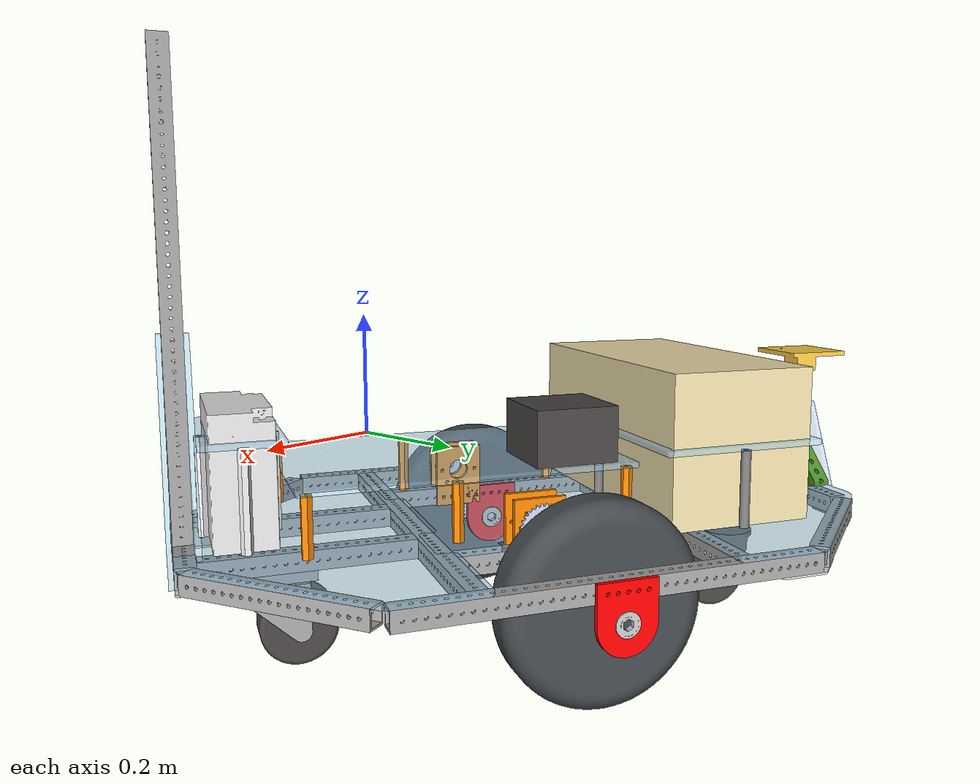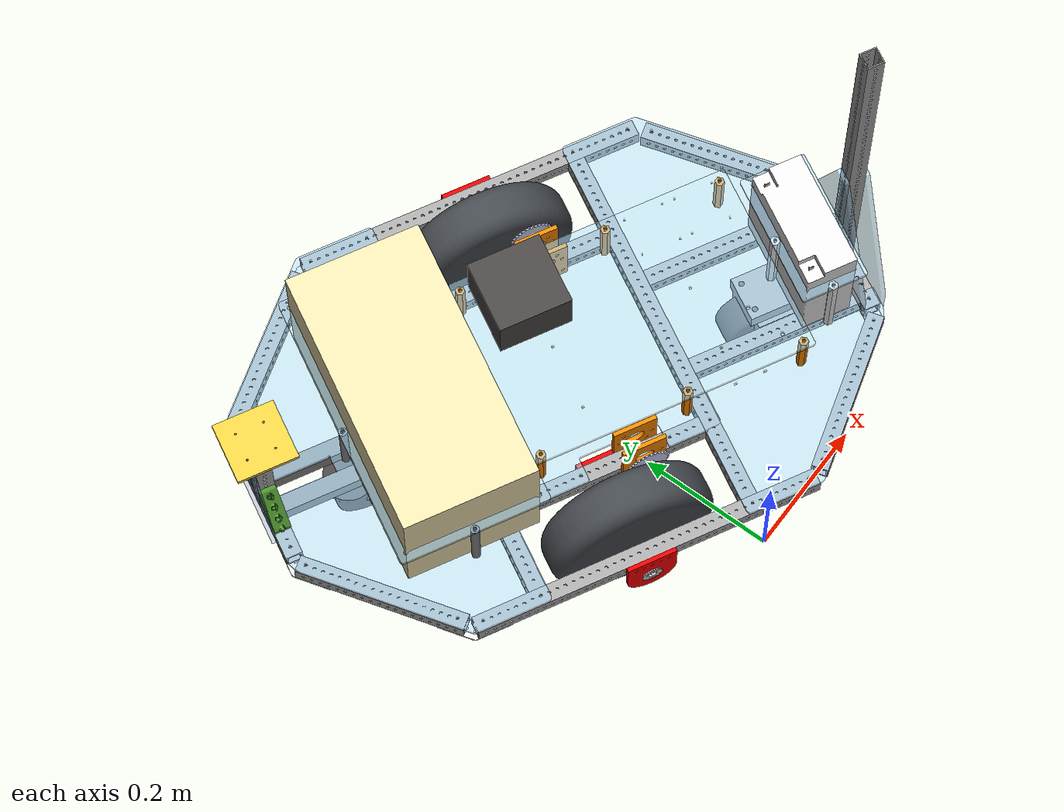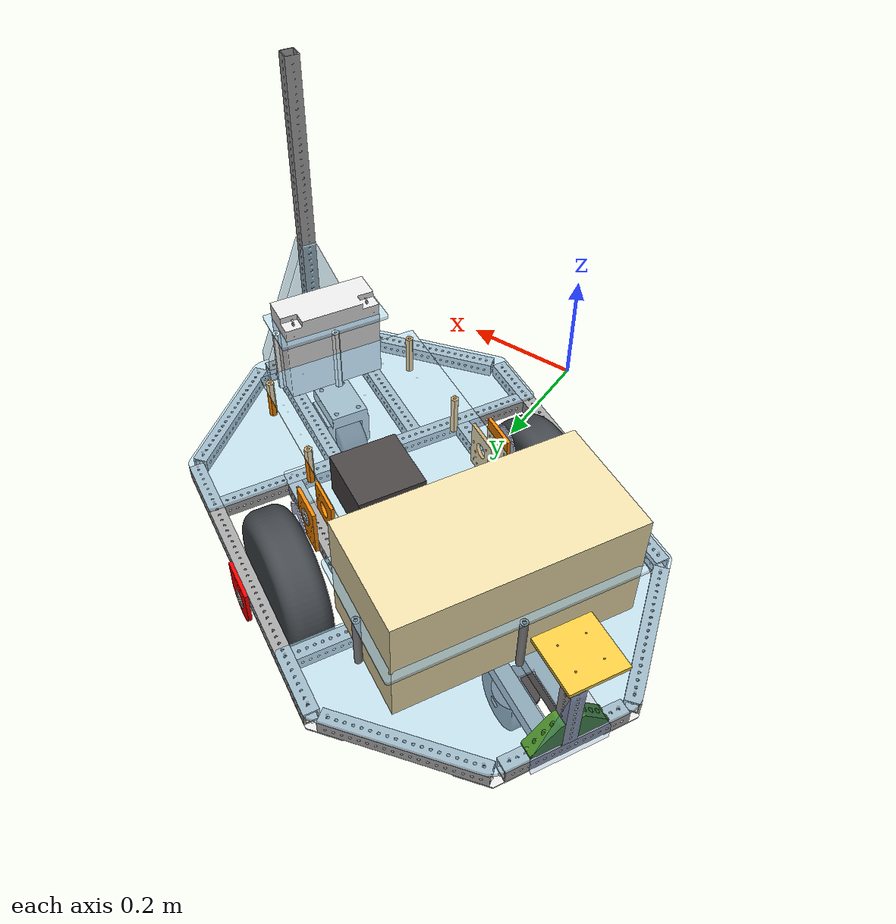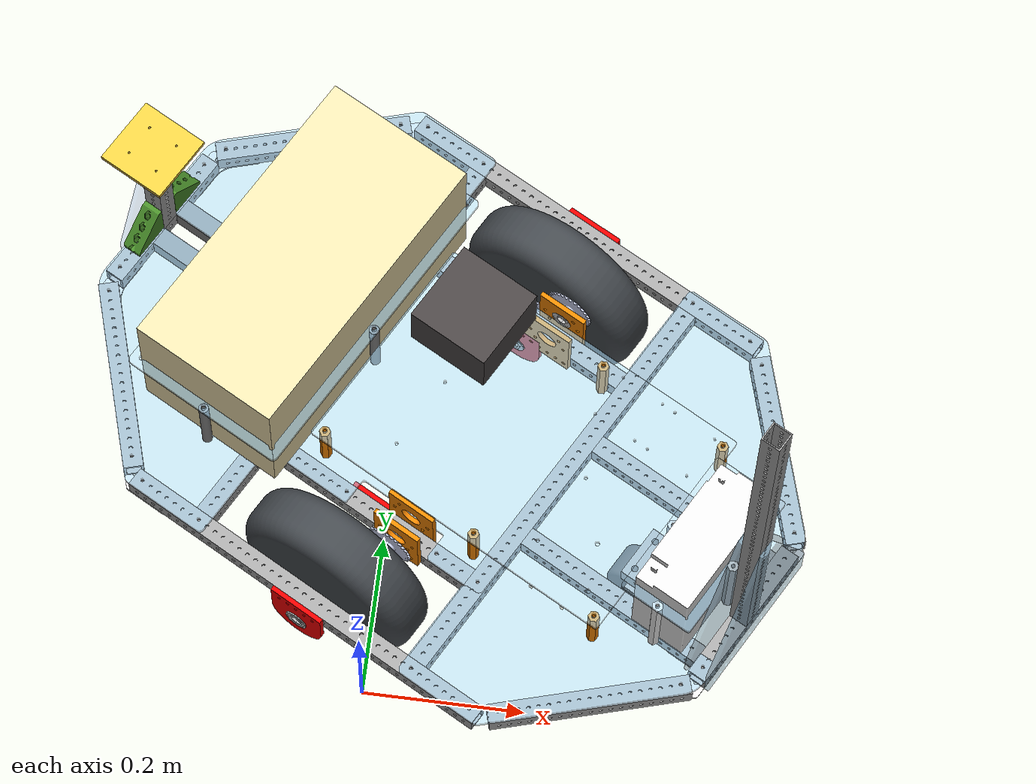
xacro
<?xml version="1.0" ?>
<!-- Generated using onshape-to-robot -->
<!-- Onshape https://cad.onshape.com/documents/e6f73c86a08716a88fa88928/w/70364c3c27402afccfdf9175/e/f88ba1396c902cb40ba93f4c -->
<robot name="igvc_description">
  <!-- Link igvc26_001 -->
  <link name="igvc26_001">
    <inertial>
      <origin xyz="-0.0368571 0.291615 0.214315" rpy="0 0 0"/>
      <mass value="56.0674"/>
      <inertia ixx="3.60749" ixy="0" ixz="0" iyy="1.28472" iyz="0.159952" izz="3.84124"/>
    </inertial>
    <!-- Part t_gusset__sharp_corners___10__0_098__thick___configuration_t_gusset__sharp_corners -->
    <visual>
      <origin xyz="0.416445 0.113415 -0.0766893" rpy="-1.5708 -4.0431e-08 1.06926"/>
      <geometry>
        <mesh filename="file://$(find igvc_description)/assets/t_gusset__sharp_corners___10__0_098__thick___configuration_t_gusset__sharp_corners.stl"/>
      </geometry>
      <material name="t_gusset__sharp_corners___10__0_098__thick___configuration_t_gusset__sharp_corners_material">
        <color rgba="0.901961 0.901961 0.901961 1"/>
      </material>
    </visual>
    <collision>
      <origin xyz="0.416445 0.113415 -0.0766893" rpy="-1.5708 -4.0431e-08 1.06926"/>
      <geometry>
        <mesh filename="file://$(find igvc_description)/assets/t_gusset__sharp_corners___10__0_098__thick___configuration_t_gusset__sharp_corners.stl"/>
      </geometry>
    </collision>
    <!-- Part part_28 -->
    <visual>
      <origin xyz="0.39351 0.212892 -0.0500392" rpy="1.6076e-08 -4.0431e-08 1.06926"/>
      <geometry>
        <mesh filename="file://$(find igvc_description)/assets/part_28.stl"/>
      </geometry>
      <material name="part_28_material">
        <color rgba="0.941176 0.87451 0.678431 1"/>
      </material>
    </visual>
    <collision>
      <origin xyz="0.39351 0.212892 -0.0500392" rpy="1.6076e-08 -4.0431e-08 1.06926"/>
      <geometry>
        <mesh filename="file://$(find igvc_description)/assets/part_28.stl"/>
      </geometry>
    </collision>
    <!-- Part igvc26_022 -->
    <visual>
      <origin xyz="0.0538636 0.399118 0.0515608" rpy="1.6076e-08 -4.0431e-08 1.06926"/>
      <geometry>
        <mesh filename="file://$(find igvc_description)/assets/igvc26_022.stl"/>
      </geometry>
      <material name="igvc26_022_material">
        <color rgba="0.615686 0.811765 0.929412 0.498039"/>
      </material>
    </visual>
    <collision>
      <origin xyz="0.0538636 0.399118 0.0515608" rpy="1.6076e-08 -4.0431e-08 1.06926"/>
      <geometry>
        <mesh filename="file://$(find igvc_description)/assets/igvc26_022.stl"/>
      </geometry>
    </collision>
    <!-- Part wcp_2103_rev2 -->
    <visual>
      <origin xyz="0.190503 0.546513 -0.0214642" rpy="-1.5708 1.45917 2.64006"/>
      <geometry>
        <mesh filename="file://$(find igvc_description)/assets/wcp_2103_rev2.stl"/>
      </geometry>
      <material name="wcp_2103_rev2_material">
        <color rgba="0.792157 0.819608 0.933333 1"/>
      </material>
    </visual>
    <collision>
      <origin xyz="0.190503 0.546513 -0.0214642" rpy="-1.5708 1.45917 2.64006"/>
      <geometry>
        <mesh filename="file://$(find igvc_description)/assets/wcp_2103_rev2.stl"/>
      </geometry>
    </collision>
    <!-- Part igvc26_013 -->
    <visual>
      <origin xyz="0.139416 0.462431 -0.0563892" rpy="1.6076e-08 -4.0431e-08 1.06926"/>
      <geometry>
        <mesh filename="file://$(find igvc_description)/assets/igvc26_013.stl"/>
      </geometry>
      <material name="igvc26_013_material">
        <color rgba="0.917647 0.917647 0.917647 1"/>
      </material>
    </visual>
    <collision>
      <origin xyz="0.139416 0.462431 -0.0563892" rpy="1.6076e-08 -4.0431e-08 1.06926"/>
      <geometry>
        <mesh filename="file://$(find igvc_description)/assets/igvc26_013.stl"/>
      </geometry>
    </collision>
    <!-- Part igvc26_003 -->
    <visual>
      <origin xyz="-0.171736 1.1724 -0.0627392" rpy="-4.0431e-08 -1.6076e-08 2.64006"/>
      <geometry>
        <mesh filename="file://$(find igvc_description)/assets/igvc26_003.stl"/>
      </geometry>
      <material name="igvc26_003_material">
        <color rgba="0.647059 0.647059 0.647059 1"/>
      </material>
    </visual>
    <collision>
      <origin xyz="-0.171736 1.1724 -0.0627392" rpy="-4.0431e-08 -1.6076e-08 2.64006"/>
      <geometry>
        <mesh filename="file://$(find igvc_description)/assets/igvc26_003.stl"/>
      </geometry>
    </collision>
    <!-- Part igvc26_023 -->
    <visual>
      <origin xyz="-0.362056 0.627164 -0.0754392" rpy="1.6076e-08 -4.0431e-08 1.06926"/>
      <geometry>
        <mesh filename="file://$(find igvc_description)/assets/igvc26_023.stl"/>
      </geometry>
      <material name="igvc26_023_material">
        <color rgba="0.25098 0.482353 0.992157 0.2"/>
      </material>
    </visual>
    <collision>
      <origin xyz="-0.362056 0.627164 -0.0754392" rpy="1.6076e-08 -4.0431e-08 1.06926"/>
      <geometry>
        <mesh filename="file://$(find igvc_description)/assets/igvc26_023.stl"/>
      </geometry>
    </collision>
    <!-- Part igvc26_011 -->
    <visual>
      <origin xyz="0.0538636 0.399118 -0.0500392" rpy="1.6076e-08 -4.0431e-08 1.06926"/>
      <geometry>
        <mesh filename="file://$(find igvc_description)/assets/igvc26_011.stl"/>
      </geometry>
      <material name="igvc26_011_material">
        <color rgba="0.615686 0.811765 0.929412 0.498039"/>
      </material>
    </visual>
    <collision>
      <origin xyz="0.0538636 0.399118 -0.0500392" rpy="1.6076e-08 -4.0431e-08 1.06926"/>
      <geometry>
        <mesh filename="file://$(find igvc_description)/assets/igvc26_011.stl"/>
      </geometry>
    </collision>
    <!-- Part igvc26_013_2 -->
    <visual>
      <origin xyz="0.0612413 0.505294 -0.0563892" rpy="1.6076e-08 -4.0431e-08 1.06926"/>
      <geometry>
        <mesh filename="file://$(find igvc_description)/assets/igvc26_013.stl"/>
      </geometry>
      <material name="igvc26_013_2_material">
        <color rgba="0.917647 0.917647 0.917647 1"/>
      </material>
    </visual>
    <collision>
      <origin xyz="0.0612413 0.505294 -0.0563892" rpy="1.6076e-08 -4.0431e-08 1.06926"/>
      <geometry>
        <mesh filename="file://$(find igvc_description)/assets/igvc26_013.stl"/>
      </geometry>
    </collision>
    <!-- Part igvc26_015 -->
    <visual>
      <origin xyz="0.0267798 0.728242 -0.0563892" rpy="1.6076e-08 -4.0431e-08 1.06926"/>
      <geometry>
        <mesh filename="file://$(find igvc_description)/assets/igvc26_015.stl"/>
      </geometry>
      <material name="igvc26_015_material">
        <color rgba="0.972549 0.529412 0.00392157 1"/>
      </material>
    </visual>
    <collision>
      <origin xyz="0.0267798 0.728242 -0.0563892" rpy="1.6076e-08 -4.0431e-08 1.06926"/>
      <geometry>
        <mesh filename="file://$(find igvc_description)/assets/igvc26_015.stl"/>
      </geometry>
    </collision>
    <!-- Part igvc26_006 -->
    <visual>
      <origin xyz="0.2153 0.482224 -0.0627392" rpy="-1.6076e-08 4.0431e-08 -2.07233"/>
      <geometry>
        <mesh filename="file://$(find igvc_description)/assets/igvc26_006.stl"/>
      </geometry>
      <material name="igvc26_006_material">
        <color rgba="0.972549 0.529412 0.00392157 1"/>
      </material>
    </visual>
    <collision>
      <origin xyz="0.2153 0.482224 -0.0627392" rpy="-1.6076e-08 4.0431e-08 -2.07233"/>
      <geometry>
        <mesh filename="file://$(find igvc_description)/assets/igvc26_006.stl"/>
      </geometry>
    </collision>
    <!-- Part igvc26_015_2 -->
    <visual>
      <origin xyz="-0.306153 0.596513 -0.0563892" rpy="1.6076e-08 -4.0431e-08 1.06926"/>
      <geometry>
        <mesh filename="file://$(find igvc_description)/assets/igvc26_015.stl"/>
      </geometry>
      <material name="igvc26_015_2_material">
        <color rgba="0.972549 0.529412 0.00392157 1"/>
      </material>
    </visual>
    <collision>
      <origin xyz="-0.306153 0.596513 -0.0563892" rpy="1.6076e-08 -4.0431e-08 1.06926"/>
      <geometry>
        <mesh filename="file://$(find igvc_description)/assets/igvc26_015.stl"/>
      </geometry>
    </collision>
    <!-- Part wcp_2103_rev2_2 -->
    <visual>
      <origin xyz="0.00631191 0.202876 -0.0214643" rpy="2.07233 1.5708 0"/>
      <geometry>
        <mesh filename="file://$(find igvc_description)/assets/wcp_2103_rev2.stl"/>
      </geometry>
      <material name="wcp_2103_rev2_2_material">
        <color rgba="0.792157 0.819608 0.933333 1"/>
      </material>
    </visual>
    <collision>
      <origin xyz="0.00631191 0.202876 -0.0214643" rpy="2.07233 1.5708 0"/>
      <geometry>
        <mesh filename="file://$(find igvc_description)/assets/wcp_2103_rev2.stl"/>
      </geometry>
    </collision>
    <!-- Part right_triangle_gusset -->
    <visual>
      <origin xyz="-0.362517 0.613187 -0.0414198" rpy="1.6076e-08 -4.0431e-08 1.06926"/>
      <geometry>
        <mesh filename="file://$(find igvc_description)/assets/right_triangle_gusset.stl"/>
      </geometry>
      <material name="right_triangle_gusset_material">
        <color rgba="0.282353 0.54902 0.160784 1"/>
      </material>
    </visual>
    <collision>
      <origin xyz="-0.362517 0.613187 -0.0414198" rpy="1.6076e-08 -4.0431e-08 1.06926"/>
      <geometry>
        <mesh filename="file://$(find igvc_description)/assets/right_triangle_gusset.stl"/>
      </geometry>
    </collision>
    <!-- Part left_triangle_gusset -->
    <visual>
      <origin xyz="-0.362594 0.612975 -0.0436892" rpy="1.6076e-08 -4.0431e-08 1.06926"/>
      <geometry>
        <mesh filename="file://$(find igvc_description)/assets/left_triangle_gusset.stl"/>
      </geometry>
      <material name="left_triangle_gusset_material">
        <color rgba="0.282353 0.54902 0.160784 1"/>
      </material>
    </visual>
    <collision>
      <origin xyz="-0.362594 0.612975 -0.0436892" rpy="1.6076e-08 -4.0431e-08 1.06926"/>
      <geometry>
        <mesh filename="file://$(find igvc_description)/assets/left_triangle_gusset.stl"/>
      </geometry>
    </collision>
    <!-- Part igvc26_019 -->
    <visual>
      <origin xyz="0.0538636 0.399118 -0.0627392" rpy="1.6076e-08 -4.0431e-08 1.06926"/>
      <geometry>
        <mesh filename="file://$(find igvc_description)/assets/igvc26_019.stl"/>
      </geometry>
      <material name="igvc26_019_material">
        <color rgba="0.615686 0.811765 0.929412 0.498039"/>
      </material>
    </visual>
    <collision>
      <origin xyz="0.0538636 0.399118 -0.0627392" rpy="1.6076e-08 -4.0431e-08 1.06926"/>
      <geometry>
        <mesh filename="file://$(find igvc_description)/assets/igvc26_019.stl"/>
      </geometry>
    </collision>
    <!-- Part 135_degree_gusset___10__0_098__thick___configuration__135_degree -->
    <visual>
      <origin xyz="-0.32561 0.261755 -0.0766892" rpy="1.5708 -3.9956e-08 1.85466"/>
      <geometry>
        <mesh filename="file://$(find igvc_description)/assets/135_degree_gusset___10__0_098__thick___configuration__135_degree.stl"/>
      </geometry>
      <material name="135_degree_gusset___10__0_098__thick___configuration__135_degree_material">
        <color rgba="0.901961 0.901961 0.901961 1"/>
      </material>
    </visual>
    <collision>
      <origin xyz="-0.32561 0.261755 -0.0766892" rpy="1.5708 -3.9956e-08 1.85466"/>
      <geometry>
        <mesh filename="file://$(find igvc_description)/assets/135_degree_gusset___10__0_098__thick___configuration__135_degree.stl"/>
      </geometry>
    </collision>
    <!-- Part igvc26_010 -->
    <visual>
      <origin xyz="0.0538636 0.399118 -0.0754392" rpy="1.6076e-08 -4.0431e-08 1.06926"/>
      <geometry>
        <mesh filename="file://$(find igvc_description)/assets/igvc26_010.stl"/>
      </geometry>
      <material name="igvc26_010_material">
        <color rgba="0.647059 0.647059 0.647059 1"/>
      </material>
    </visual>
    <collision>
      <origin xyz="0.0538636 0.399118 -0.0754392" rpy="1.6076e-08 -4.0431e-08 1.06926"/>
      <geometry>
        <mesh filename="file://$(find igvc_description)/assets/igvc26_010.stl"/>
      </geometry>
    </collision>
    <!-- Part wcp_2103_rev2_3 -->
    <visual>
      <origin xyz="-0.0398553 0.228189 -0.100839" rpy="1.5708 1.19363 -0.501532"/>
      <geometry>
        <mesh filename="file://$(find igvc_description)/assets/wcp_2103_rev2.stl"/>
      </geometry>
      <material name="wcp_2103_rev2_3_material">
        <color rgba="0.792157 0.819608 0.933333 1"/>
      </material>
    </visual>
    <collision>
      <origin xyz="-0.0398553 0.228189 -0.100839" rpy="1.5708 1.19363 -0.501532"/>
      <geometry>
        <mesh filename="file://$(find igvc_description)/assets/wcp_2103_rev2.stl"/>
      </geometry>
    </collision>
    <!-- Part igvc26_005 -->
    <visual>
      <origin xyz="0.360364 0.958126 -0.0627392" rpy="1.6076e-08 -4.0431e-08 1.06926"/>
      <geometry>
        <mesh filename="file://$(find igvc_description)/assets/igvc26_005.stl"/>
      </geometry>
      <material name="igvc26_005_material">
        <color rgba="1 0 0 1"/>
      </material>
    </visual>
    <collision>
      <origin xyz="0.360364 0.958126 -0.0627392" rpy="1.6076e-08 -4.0431e-08 1.06926"/>
      <geometry>
        <mesh filename="file://$(find igvc_description)/assets/igvc26_005.stl"/>
      </geometry>
    </collision>
    <!-- Part jetson_computer -->
    <visual>
      <origin xyz="0.0264255 0.507571 0.0388608" rpy="1.6076e-08 -4.0431e-08 1.06926"/>
      <geometry>
        <mesh filename="file://$(find igvc_description)/assets/jetson_computer.stl"/>
      </geometry>
      <material name="jetson_computer_material">
        <color rgba="0.286275 0.266667 0.266667 1"/>
      </material>
    </visual>
    <collision>
      <origin xyz="0.0264255 0.507571 0.0388608" rpy="1.6076e-08 -4.0431e-08 1.06926"/>
      <geometry>
        <mesh filename="file://$(find igvc_description)/assets/jetson_computer.stl"/>
      </geometry>
    </collision>
    <!-- Part part_1 -->
    <visual>
      <origin xyz="-0.345352 0.618005 0.150621" rpy="1.6076e-08 -4.0431e-08 1.06926"/>
      <geometry>
        <mesh filename="file://$(find igvc_description)/assets/part_1.stl"/>
      </geometry>
      <material name="part_1_material">
        <color rgba="0.980392 0.796078 0.262745 1"/>
      </material>
    </visual>
    <collision>
      <origin xyz="-0.345352 0.618005 0.150621" rpy="1.6076e-08 -4.0431e-08 1.06926"/>
      <geometry>
        <mesh filename="file://$(find igvc_description)/assets/part_1.stl"/>
      </geometry>
    </collision>
    <!-- Part igvc26_003_2 -->
    <visual>
      <origin xyz="0.272956 0.463037 -0.0627392" rpy="-4.0431e-08 -1.6076e-08 2.64006"/>
      <geometry>
        <mesh filename="file://$(find igvc_description)/assets/igvc26_003.stl"/>
      </geometry>
      <material name="igvc26_003_2_material">
        <color rgba="0.647059 0.647059 0.647059 1"/>
      </material>
    </visual>
    <collision>
      <origin xyz="0.272956 0.463037 -0.0627392" rpy="-4.0431e-08 -1.6076e-08 2.64006"/>
      <geometry>
        <mesh filename="file://$(find igvc_description)/assets/igvc26_003.stl"/>
      </geometry>
    </collision>
    <!-- Part igvc26_021 -->
    <visual>
      <origin xyz="0.249264 0.530962 -0.0436892" rpy="1.6076e-08 -4.0431e-08 1.06926"/>
      <geometry>
        <mesh filename="file://$(find igvc_description)/assets/igvc26_021.stl"/>
      </geometry>
      <material name="igvc26_021_material">
        <color rgba="0.498039 0.498039 0.498039 1"/>
      </material>
    </visual>
    <collision>
      <origin xyz="0.249264 0.530962 -0.0436892" rpy="1.6076e-08 -4.0431e-08 1.06926"/>
      <geometry>
        <mesh filename="file://$(find igvc_description)/assets/igvc26_021.stl"/>
      </geometry>
    </collision>
    <!-- Part igvc26_001 -->
    <visual>
      <origin xyz="0.0538636 0.399118 -0.0627392" rpy="1.6076e-08 -4.0431e-08 1.06926"/>
      <geometry>
        <mesh filename="file://$(find igvc_description)/assets/igvc26_001.stl"/>
      </geometry>
      <material name="igvc26_001_material">
        <color rgba="0.647059 0.647059 0.647059 1"/>
      </material>
    </visual>
    <collision>
      <origin xyz="0.0538636 0.399118 -0.0627392" rpy="1.6076e-08 -4.0431e-08 1.06926"/>
      <geometry>
        <mesh filename="file://$(find igvc_description)/assets/igvc26_001.stl"/>
      </geometry>
    </collision>
    <!-- Part igvc26_008 -->
    <visual>
      <origin xyz="0.343399 0.240368 -0.0627392" rpy="1.6076e-08 -4.0431e-08 1.06926"/>
      <geometry>
        <mesh filename="file://$(find igvc_description)/assets/igvc26_008.stl"/>
      </geometry>
      <material name="igvc26_008_material">
        <color rgba="0.647059 0.647059 0.647059 1"/>
      </material>
    </visual>
    <collision>
      <origin xyz="0.343399 0.240368 -0.0627392" rpy="1.6076e-08 -4.0431e-08 1.06926"/>
      <geometry>
        <mesh filename="file://$(find igvc_description)/assets/igvc26_008.stl"/>
      </geometry>
    </collision>
    <!-- Part igvc26_020 -->
    <visual>
      <origin xyz="0.0538636 0.399118 -0.0500392" rpy="1.6076e-08 -4.0431e-08 1.06926"/>
      <geometry>
        <mesh filename="file://$(find igvc_description)/assets/igvc26_020.stl"/>
      </geometry>
      <material name="igvc26_020_material">
        <color rgba="0.615686 0.811765 0.929412 0.498039"/>
      </material>
    </visual>
    <collision>
      <origin xyz="0.0538636 0.399118 -0.0500392" rpy="1.6076e-08 -4.0431e-08 1.06926"/>
      <geometry>
        <mesh filename="file://$(find igvc_description)/assets/igvc26_020.stl"/>
      </geometry>
    </collision>
    <!-- Part igvc26_005_2 -->
    <visual>
      <origin xyz="0.277936 0.80779 -0.0627392" rpy="1.6076e-08 -4.0431e-08 1.06926"/>
      <geometry>
        <mesh filename="file://$(find igvc_description)/assets/igvc26_005.stl"/>
      </geometry>
      <material name="igvc26_005_2_material">
        <color rgba="1 0 0 1"/>
      </material>
    </visual>
    <collision>
      <origin xyz="0.277936 0.80779 -0.0627392" rpy="1.6076e-08 -4.0431e-08 1.06926"/>
      <geometry>
        <mesh filename="file://$(find igvc_description)/assets/igvc26_005.stl"/>
      </geometry>
    </collision>
    <!-- Part igvc26_021_2 -->
    <visual>
      <origin xyz="0.0538636 0.399118 -0.0436892" rpy="1.6076e-08 -4.0431e-08 1.06926"/>
      <geometry>
        <mesh filename="file://$(find igvc_description)/assets/igvc26_021.stl"/>
      </geometry>
      <material name="igvc26_021_2_material">
        <color rgba="0.498039 0.498039 0.498039 1"/>
      </material>
    </visual>
    <collision>
      <origin xyz="0.0538636 0.399118 -0.0436892" rpy="1.6076e-08 -4.0431e-08 1.06926"/>
      <geometry>
        <mesh filename="file://$(find igvc_description)/assets/igvc26_021.stl"/>
      </geometry>
    </collision>
    <!-- Part igvc26_013_3 -->
    <visual>
      <origin xyz="0.320827 0.678131 -0.0563892" rpy="3.4138e-08 -2.6976e-08 0.545666"/>
      <geometry>
        <mesh filename="file://$(find igvc_description)/assets/igvc26_013.stl"/>
      </geometry>
      <material name="igvc26_013_3_material">
        <color rgba="0.917647 0.917647 0.917647 1"/>
      </material>
    </visual>
    <collision>
      <origin xyz="0.320827 0.678131 -0.0563892" rpy="3.4138e-08 -2.6976e-08 0.545666"/>
      <geometry>
        <mesh filename="file://$(find igvc_description)/assets/igvc26_013.stl"/>
      </geometry>
    </collision>
    <!-- Part igvc26_005_3 -->
    <visual>
      <origin xyz="-0.170209 -0.00955518 -0.0627393" rpy="-1.6076e-08 4.0431e-08 -2.07233"/>
      <geometry>
        <mesh filename="file://$(find igvc_description)/assets/igvc26_005.stl"/>
      </geometry>
      <material name="igvc26_005_3_material">
        <color rgba="1 0 0 1"/>
      </material>
    </visual>
    <collision>
      <origin xyz="-0.170209 -0.00955518 -0.0627393" rpy="-1.6076e-08 4.0431e-08 -2.07233"/>
      <geometry>
        <mesh filename="file://$(find igvc_description)/assets/igvc26_005.stl"/>
      </geometry>
    </collision>
    <!-- Part t_gusset__sharp_corners___10__0_098__thick___configuration_t_gusset__sharp_corners_2 -->
    <visual>
      <origin xyz="0.489714 0.247046 -0.0766892" rpy="-1.5708 -4.0431e-08 1.06926"/>
      <geometry>
        <mesh filename="file://$(find igvc_description)/assets/t_gusset__sharp_corners___10__0_098__thick___configuration_t_gusset__sharp_corners.stl"/>
      </geometry>
      <material name="t_gusset__sharp_corners___10__0_098__thick___configuration_t_gusset__sharp_corners_2_material">
        <color rgba="0.901961 0.901961 0.901961 1"/>
      </material>
    </visual>
    <collision>
      <origin xyz="0.489714 0.247046 -0.0766892" rpy="-1.5708 -4.0431e-08 1.06926"/>
      <geometry>
        <mesh filename="file://$(find igvc_description)/assets/t_gusset__sharp_corners___10__0_098__thick___configuration_t_gusset__sharp_corners.stl"/>
      </geometry>
    </collision>
    <!-- Part igvc26_006_2 -->
    <visual>
      <origin xyz="-0.0337496 0.239325 -0.0627392" rpy="1.6076e-08 -4.0431e-08 1.06926"/>
      <geometry>
        <mesh filename="file://$(find igvc_description)/assets/igvc26_006.stl"/>
      </geometry>
      <material name="igvc26_006_2_material">
        <color rgba="0.972549 0.529412 0.00392157 1"/>
      </material>
    </visual>
    <collision>
      <origin xyz="-0.0337496 0.239325 -0.0627392" rpy="1.6076e-08 -4.0431e-08 1.06926"/>
      <geometry>
        <mesh filename="file://$(find igvc_description)/assets/igvc26_006.stl"/>
      </geometry>
    </collision>
    <!-- Part igvc26_012 -->
    <visual>
      <origin xyz="0.0538636 0.399118 -0.0563892" rpy="1.6076e-08 -4.0431e-08 1.06926"/>
      <geometry>
        <mesh filename="file://$(find igvc_description)/assets/igvc26_012.stl"/>
      </geometry>
      <material name="igvc26_012_material">
        <color rgba="0.615686 0.811765 0.929412 0.498039"/>
      </material>
    </visual>
    <collision>
      <origin xyz="0.0538636 0.399118 -0.0563892" rpy="1.6076e-08 -4.0431e-08 1.06926"/>
      <geometry>
        <mesh filename="file://$(find igvc_description)/assets/igvc26_012.stl"/>
      </geometry>
    </collision>
    <!-- Part igvc26_008_2 -->
    <visual>
      <origin xyz="0.0538636 0.399118 -0.0627392" rpy="1.6076e-08 -4.0431e-08 1.06926"/>
      <geometry>
        <mesh filename="file://$(find igvc_description)/assets/igvc26_008.stl"/>
      </geometry>
      <material name="igvc26_008_2_material">
        <color rgba="0.647059 0.647059 0.647059 1"/>
      </material>
    </visual>
    <collision>
      <origin xyz="0.0538636 0.399118 -0.0627392" rpy="1.6076e-08 -4.0431e-08 1.06926"/>
      <geometry>
        <mesh filename="file://$(find igvc_description)/assets/igvc26_008.stl"/>
      </geometry>
    </collision>
    <!-- Part igvc26_004 -->
    <visual>
      <origin xyz="0.0538636 0.399118 -0.0500392" rpy="1.6076e-08 -4.0431e-08 1.06926"/>
      <geometry>
        <mesh filename="file://$(find igvc_description)/assets/igvc26_004.stl"/>
      </geometry>
      <material name="igvc26_004_material">
        <color rgba="0.615686 0.811765 0.929412 0.498039"/>
      </material>
    </visual>
    <collision>
      <origin xyz="0.0538636 0.399118 -0.0500392" rpy="1.6076e-08 -4.0431e-08 1.06926"/>
      <geometry>
        <mesh filename="file://$(find igvc_description)/assets/igvc26_004.stl"/>
      </geometry>
    </collision>
    <!-- Part igvc26_002 -->
    <visual>
      <origin xyz="0.852295 -0.0386569 -0.0627393" rpy="1.6076e-08 -4.0431e-08 1.06926"/>
      <geometry>
        <mesh filename="file://$(find igvc_description)/assets/igvc26_002.stl"/>
      </geometry>
      <material name="igvc26_002_material">
        <color rgba="0.647059 0.647059 0.647059 1"/>
      </material>
    </visual>
    <collision>
      <origin xyz="0.852295 -0.0386569 -0.0627393" rpy="1.6076e-08 -4.0431e-08 1.06926"/>
      <geometry>
        <mesh filename="file://$(find igvc_description)/assets/igvc26_002.stl"/>
      </geometry>
    </collision>
    <!-- Part igvc26_019_2 -->
    <visual>
      <origin xyz="0.0260237 0.414382 -0.0627392" rpy="1.6076e-08 -4.0431e-08 1.06926"/>
      <geometry>
        <mesh filename="file://$(find igvc_description)/assets/igvc26_019.stl"/>
      </geometry>
      <material name="igvc26_019_2_material">
        <color rgba="0.615686 0.811765 0.929412 0.498039"/>
      </material>
    </visual>
    <collision>
      <origin xyz="0.0260237 0.414382 -0.0627392" rpy="1.6076e-08 -4.0431e-08 1.06926"/>
      <geometry>
        <mesh filename="file://$(find igvc_description)/assets/igvc26_019.stl"/>
      </geometry>
    </collision>
    <!-- Part 1_2__hex_bore_bearing__1_125__od__0_313__wd__shielded__flanged___f6b8f0dcc29d10daa2678488de8ff804 -->
    <visual>
      <origin xyz="-0.0978602 0.122397 -0.100839" rpy="2.07233 1.5708 0"/>
      <geometry>
        <mesh filename="file://$(find igvc_description)/assets/1_2__hex_bore_bearing__1_125__od__0_313__wd__shielded__flanged___f6b8f0dcc29d10daa2678488de8ff804.stl"/>
      </geometry>
      <material name="1_2__hex_bore_bearing__1_125__od__0_313__wd__shielded__flanged___f6b8f0dcc29d10daa2678488de8ff804_material">
        <color rgba="0.776471 0.776471 0.776471 1"/>
      </material>
    </visual>
    <collision>
      <origin xyz="-0.0978602 0.122397 -0.100839" rpy="2.07233 1.5708 0"/>
      <geometry>
        <mesh filename="file://$(find igvc_description)/assets/1_2__hex_bore_bearing__1_125__od__0_313__wd__shielded__flanged___f6b8f0dcc29d10daa2678488de8ff804.stl"/>
      </geometry>
    </collision>
    <!-- Part igvc26_002_2 -->
    <visual>
      <origin xyz="-0.564239 0.218789 0.0515607" rpy="0.501532 1.5708 0"/>
      <geometry>
        <mesh filename="file://$(find igvc_description)/assets/igvc26_002.stl"/>
      </geometry>
      <material name="igvc26_002_2_material">
        <color rgba="0.647059 0.647059 0.647059 1"/>
      </material>
    </visual>
    <collision>
      <origin xyz="-0.564239 0.218789 0.0515607" rpy="0.501532 1.5708 0"/>
      <geometry>
        <mesh filename="file://$(find igvc_description)/assets/igvc26_002.stl"/>
      </geometry>
    </collision>
    <!-- Part igvc26_017 -->
    <visual>
      <origin xyz="0.0538636 0.399118 -0.0627392" rpy="1.6076e-08 -4.0431e-08 1.06926"/>
      <geometry>
        <mesh filename="file://$(find igvc_description)/assets/igvc26_017.stl"/>
      </geometry>
      <material name="igvc26_017_material">
        <color rgba="0.647059 0.647059 0.647059 1"/>
      </material>
    </visual>
    <collision>
      <origin xyz="0.0538636 0.399118 -0.0627392" rpy="1.6076e-08 -4.0431e-08 1.06926"/>
      <geometry>
        <mesh filename="file://$(find igvc_description)/assets/igvc26_017.stl"/>
      </geometry>
    </collision>
    <!-- Part igvc26_015_3 -->
    <visual>
      <origin xyz="-0.173667 0.838146 -0.0563892" rpy="1.6076e-08 -4.0431e-08 1.06926"/>
      <geometry>
        <mesh filename="file://$(find igvc_description)/assets/igvc26_015.stl"/>
      </geometry>
      <material name="igvc26_015_3_material">
        <color rgba="0.972549 0.529412 0.00392157 1"/>
      </material>
    </visual>
    <collision>
      <origin xyz="-0.173667 0.838146 -0.0563892" rpy="1.6076e-08 -4.0431e-08 1.06926"/>
      <geometry>
        <mesh filename="file://$(find igvc_description)/assets/igvc26_015.stl"/>
      </geometry>
    </collision>
    <!-- Part 1_2__hex_bore_bearing__1_125__od__0_313__wd__shielded__flanged___f6b8f0dcc29d10daa2678488de8ff804_2 -->
    <visual>
      <origin xyz="0.181344 0.529809 -0.0214642" rpy="-1.06926 1.5708 0"/>
      <geometry>
        <mesh filename="file://$(find igvc_description)/assets/1_2__hex_bore_bearing__1_125__od__0_313__wd__shielded__flanged___f6b8f0dcc29d10daa2678488de8ff804.stl"/>
      </geometry>
      <material name="1_2__hex_bore_bearing__1_125__od__0_313__wd__shielded__flanged___f6b8f0dcc29d10daa2678488de8ff804_2_material">
        <color rgba="0.776471 0.776471 0.776471 1"/>
      </material>
    </visual>
    <collision>
      <origin xyz="0.181344 0.529809 -0.0214642" rpy="-1.06926 1.5708 0"/>
      <geometry>
        <mesh filename="file://$(find igvc_description)/assets/1_2__hex_bore_bearing__1_125__od__0_313__wd__shielded__flanged___f6b8f0dcc29d10daa2678488de8ff804.stl"/>
      </geometry>
    </collision>
    <!-- Part igvc26_021_3 -->
    <visual>
      <origin xyz="0.0599532 0.63476 -0.0436892" rpy="1.6076e-08 -4.0431e-08 1.06926"/>
      <geometry>
        <mesh filename="file://$(find igvc_description)/assets/igvc26_021.stl"/>
      </geometry>
      <material name="igvc26_021_3_material">
        <color rgba="0.498039 0.498039 0.498039 1"/>
      </material>
    </visual>
    <collision>
      <origin xyz="0.0599532 0.63476 -0.0436892" rpy="1.6076e-08 -4.0431e-08 1.06926"/>
      <geometry>
        <mesh filename="file://$(find igvc_description)/assets/igvc26_021.stl"/>
      </geometry>
    </collision>
    <!-- Part igvc26_002_3 -->
    <visual>
      <origin xyz="0.0538636 0.399118 -0.0627392" rpy="1.6076e-08 -4.0431e-08 1.06926"/>
      <geometry>
        <mesh filename="file://$(find igvc_description)/assets/igvc26_002.stl"/>
      </geometry>
      <material name="igvc26_002_3_material">
        <color rgba="0.647059 0.647059 0.647059 1"/>
      </material>
    </visual>
    <collision>
      <origin xyz="0.0538636 0.399118 -0.0627392" rpy="1.6076e-08 -4.0431e-08 1.06926"/>
      <geometry>
        <mesh filename="file://$(find igvc_description)/assets/igvc26_002.stl"/>
      </geometry>
    </collision>
    <!-- Part igvc26_007 -->
    <visual>
      <origin xyz="-0.103045 0.11294 -0.0627393" rpy="-1.6076e-08 4.0431e-08 -2.07233"/>
      <geometry>
        <mesh filename="file://$(find igvc_description)/assets/igvc26_007.stl"/>
      </geometry>
      <material name="igvc26_007_material">
        <color rgba="0.647059 0.647059 0.647059 1"/>
      </material>
    </visual>
    <collision>
      <origin xyz="-0.103045 0.11294 -0.0627393" rpy="-1.6076e-08 4.0431e-08 -2.07233"/>
      <geometry>
        <mesh filename="file://$(find igvc_description)/assets/igvc26_007.stl"/>
      </geometry>
    </collision>
    <!-- Part igvc26_015_4 -->
    <visual>
      <origin xyz="0.0538636 0.399118 -0.0563892" rpy="1.6076e-08 -4.0431e-08 1.06926"/>
      <geometry>
        <mesh filename="file://$(find igvc_description)/assets/igvc26_015.stl"/>
      </geometry>
      <material name="igvc26_015_4_material">
        <color rgba="0.972549 0.529412 0.00392157 1"/>
      </material>
    </visual>
    <collision>
      <origin xyz="0.0538636 0.399118 -0.0563892" rpy="1.6076e-08 -4.0431e-08 1.06926"/>
      <geometry>
        <mesh filename="file://$(find igvc_description)/assets/igvc26_015.stl"/>
      </geometry>
    </collision>
    <!-- Part 135_degree_gusset___10__0_098__thick___configuration__135_degree_2 -->
    <visual>
      <origin xyz="-0.0343735 0.792923 -0.0766892" rpy="1.5708 1.6076e-08 -0.501532"/>
      <geometry>
        <mesh filename="file://$(find igvc_description)/assets/135_degree_gusset___10__0_098__thick___configuration__135_degree.stl"/>
      </geometry>
      <material name="135_degree_gusset___10__0_098__thick___configuration__135_degree_2_material">
        <color rgba="0.901961 0.901961 0.901961 1"/>
      </material>
    </visual>
    <collision>
      <origin xyz="-0.0343735 0.792923 -0.0766892" rpy="1.5708 1.6076e-08 -0.501532"/>
      <geometry>
        <mesh filename="file://$(find igvc_description)/assets/135_degree_gusset___10__0_098__thick___configuration__135_degree.stl"/>
      </geometry>
    </collision>
    <!-- Part igvc26_015_5 -->
    <visual>
      <origin xyz="-0.105706 0.486609 -0.0563892" rpy="1.6076e-08 -4.0431e-08 1.06926"/>
      <geometry>
        <mesh filename="file://$(find igvc_description)/assets/igvc26_015.stl"/>
      </geometry>
      <material name="igvc26_015_5_material">
        <color rgba="0.972549 0.529412 0.00392157 1"/>
      </material>
    </visual>
    <collision>
      <origin xyz="-0.105706 0.486609 -0.0563892" rpy="1.6076e-08 -4.0431e-08 1.06926"/>
      <geometry>
        <mesh filename="file://$(find igvc_description)/assets/igvc26_015.stl"/>
      </geometry>
    </collision>
    <!-- Part 1_2__hex_bore_bearing__1_125__od__0_313__wd__shielded__flanged___f6b8f0dcc29d10daa2678488de8ff804_3 -->
    <visual>
      <origin xyz="-0.0184851 0.267165 -0.100839" rpy="-2.07233 -1.5708 0"/>
      <geometry>
        <mesh filename="file://$(find igvc_description)/assets/1_2__hex_bore_bearing__1_125__od__0_313__wd__shielded__flanged___f6b8f0dcc29d10daa2678488de8ff804.stl"/>
      </geometry>
      <material name="1_2__hex_bore_bearing__1_125__od__0_313__wd__shielded__flanged___f6b8f0dcc29d10daa2678488de8ff804_3_material">
        <color rgba="0.776471 0.776471 0.776471 1"/>
      </material>
    </visual>
    <collision>
      <origin xyz="-0.0184851 0.267165 -0.100839" rpy="-2.07233 -1.5708 0"/>
      <geometry>
        <mesh filename="file://$(find igvc_description)/assets/1_2__hex_bore_bearing__1_125__od__0_313__wd__shielded__flanged___f6b8f0dcc29d10daa2678488de8ff804.stl"/>
      </geometry>
    </collision>
    <!-- Part 135_degree_gusset___10__0_098__thick___configuration__135_degree_3 -->
    <visual>
      <origin xyz="-0.400304 0.517781 -0.0766892" rpy="1.5708 -4.0431e-08 1.06926"/>
      <geometry>
        <mesh filename="file://$(find igvc_description)/assets/135_degree_gusset___10__0_098__thick___configuration__135_degree.stl"/>
      </geometry>
      <material name="135_degree_gusset___10__0_098__thick___configuration__135_degree_3_material">
        <color rgba="0.901961 0.901961 0.901961 1"/>
      </material>
    </visual>
    <collision>
      <origin xyz="-0.400304 0.517781 -0.0766892" rpy="1.5708 -4.0431e-08 1.06926"/>
      <geometry>
        <mesh filename="file://$(find igvc_description)/assets/135_degree_gusset___10__0_098__thick___configuration__135_degree.stl"/>
      </geometry>
    </collision>
    <!-- Part igvc26_010_2 -->
    <visual>
      <origin xyz="0.127133 0.532749 -0.0754392" rpy="1.6076e-08 -4.0431e-08 1.06926"/>
      <geometry>
        <mesh filename="file://$(find igvc_description)/assets/igvc26_010.stl"/>
      </geometry>
      <material name="igvc26_010_2_material">
        <color rgba="0.647059 0.647059 0.647059 1"/>
      </material>
    </visual>
    <collision>
      <origin xyz="0.127133 0.532749 -0.0754392" rpy="1.6076e-08 -4.0431e-08 1.06926"/>
      <geometry>
        <mesh filename="file://$(find igvc_description)/assets/igvc26_010.stl"/>
      </geometry>
    </collision>
    <!-- Part igvc26_003_3 -->
    <visual>
      <origin xyz="0.0538636 0.399118 -0.0627392" rpy="-1.6076e-08 4.0431e-08 -2.07233"/>
      <geometry>
        <mesh filename="file://$(find igvc_description)/assets/igvc26_003.stl"/>
      </geometry>
      <material name="igvc26_003_3_material">
        <color rgba="0.647059 0.647059 0.647059 1"/>
      </material>
    </visual>
    <collision>
      <origin xyz="0.0538636 0.399118 -0.0627392" rpy="-1.6076e-08 4.0431e-08 -2.07233"/>
      <geometry>
        <mesh filename="file://$(find igvc_description)/assets/igvc26_003.stl"/>
      </geometry>
    </collision>
    <!-- Part igvc26_007_2 -->
    <visual>
      <origin xyz="0.210773 0.685295 -0.0627392" rpy="1.6076e-08 -4.0431e-08 1.06926"/>
      <geometry>
        <mesh filename="file://$(find igvc_description)/assets/igvc26_007.stl"/>
      </geometry>
      <material name="igvc26_007_2_material">
        <color rgba="0.647059 0.647059 0.647059 1"/>
      </material>
    </visual>
    <collision>
      <origin xyz="0.210773 0.685295 -0.0627392" rpy="1.6076e-08 -4.0431e-08 1.06926"/>
      <geometry>
        <mesh filename="file://$(find igvc_description)/assets/igvc26_007.stl"/>
      </geometry>
    </collision>
    <!-- Part igvc26_015_6 -->
    <visual>
      <origin xyz="0.18635 0.640751 -0.0563892" rpy="1.6076e-08 -4.0431e-08 1.06926"/>
      <geometry>
        <mesh filename="file://$(find igvc_description)/assets/igvc26_015.stl"/>
      </geometry>
      <material name="igvc26_015_6_material">
        <color rgba="0.972549 0.529412 0.00392157 1"/>
      </material>
    </visual>
    <collision>
      <origin xyz="0.18635 0.640751 -0.0563892" rpy="1.6076e-08 -4.0431e-08 1.06926"/>
      <geometry>
        <mesh filename="file://$(find igvc_description)/assets/igvc26_015.stl"/>
      </geometry>
    </collision>
    <!-- Part 1_2__hex_bore_bearing__1_125__od__0_313__wd__shielded__flanged___f6b8f0dcc29d10daa2678488de8ff804_4 -->
    <visual>
      <origin xyz="0.205587 0.675838 -0.100839" rpy="-1.06926 1.5708 0"/>
      <geometry>
        <mesh filename="file://$(find igvc_description)/assets/1_2__hex_bore_bearing__1_125__od__0_313__wd__shielded__flanged___f6b8f0dcc29d10daa2678488de8ff804.stl"/>
      </geometry>
      <material name="1_2__hex_bore_bearing__1_125__od__0_313__wd__shielded__flanged___f6b8f0dcc29d10daa2678488de8ff804_4_material">
        <color rgba="0.776471 0.776471 0.776471 1"/>
      </material>
    </visual>
    <collision>
      <origin xyz="0.205587 0.675838 -0.100839" rpy="-1.06926 1.5708 0"/>
      <geometry>
        <mesh filename="file://$(find igvc_description)/assets/1_2__hex_bore_bearing__1_125__od__0_313__wd__shielded__flanged___f6b8f0dcc29d10daa2678488de8ff804.stl"/>
      </geometry>
    </collision>
    <!-- Part igvc26_001_2 -->
    <visual>
      <origin xyz="0.3451 0.930286 -0.0627392" rpy="1.6076e-08 -4.0431e-08 1.06926"/>
      <geometry>
        <mesh filename="file://$(find igvc_description)/assets/igvc26_001.stl"/>
      </geometry>
      <material name="igvc26_001_2_material">
        <color rgba="0.647059 0.647059 0.647059 1"/>
      </material>
    </visual>
    <collision>
      <origin xyz="0.3451 0.930286 -0.0627392" rpy="1.6076e-08 -4.0431e-08 1.06926"/>
      <geometry>
        <mesh filename="file://$(find igvc_description)/assets/igvc26_001.stl"/>
      </geometry>
    </collision>
    <!-- Part igvc26_006_3 -->
    <visual>
      <origin xyz="-0.0184851 0.267165 -0.0627392" rpy="1.6076e-08 -4.0431e-08 1.06926"/>
      <geometry>
        <mesh filename="file://$(find igvc_description)/assets/igvc26_006.stl"/>
      </geometry>
      <material name="igvc26_006_3_material">
        <color rgba="0.972549 0.529412 0.00392157 1"/>
      </material>
    </visual>
    <collision>
      <origin xyz="-0.0184851 0.267165 -0.0627392" rpy="1.6076e-08 -4.0431e-08 1.06926"/>
      <geometry>
        <mesh filename="file://$(find igvc_description)/assets/igvc26_006.stl"/>
      </geometry>
    </collision>
    <!-- Part igvc26_016 -->
    <visual>
      <origin xyz="-0.327718 0.62375 -0.176104" rpy="-1.06926 1.5708 0"/>
      <geometry>
        <mesh filename="file://$(find igvc_description)/assets/igvc26_016.stl"/>
      </geometry>
      <material name="igvc26_016_material">
        <color rgba="0.498039 0.498039 0.498039 1"/>
      </material>
    </visual>
    <collision>
      <origin xyz="-0.327718 0.62375 -0.176104" rpy="-1.06926 1.5708 0"/>
      <geometry>
        <mesh filename="file://$(find igvc_description)/assets/igvc26_016.stl"/>
      </geometry>
    </collision>
    <!-- Part robot_battery__vendor_default -->
    <visual>
      <origin xyz="0.425078 0.195728 0.0398768" rpy="-1.6076e-08 4.0431e-08 -2.07233"/>
      <geometry>
        <mesh filename="file://$(find igvc_description)/assets/robot_battery__vendor_default.stl"/>
      </geometry>
      <material name="robot_battery__vendor_default_material">
        <color rgba="0.901961 0.901961 0.901961 1"/>
      </material>
    </visual>
    <collision>
      <origin xyz="0.425078 0.195728 0.0398768" rpy="-1.6076e-08 4.0431e-08 -2.07233"/>
      <geometry>
        <mesh filename="file://$(find igvc_description)/assets/robot_battery__vendor_default.stl"/>
      </geometry>
    </collision>
    <!-- Part igvc26_006_4 -->
    <visual>
      <origin xyz="0.230564 0.510064 -0.0627392" rpy="-1.6076e-08 4.0431e-08 -2.07233"/>
      <geometry>
        <mesh filename="file://$(find igvc_description)/assets/igvc26_006.stl"/>
      </geometry>
      <material name="igvc26_006_4_material">
        <color rgba="0.972549 0.529412 0.00392157 1"/>
      </material>
    </visual>
    <collision>
      <origin xyz="0.230564 0.510064 -0.0627392" rpy="-1.6076e-08 4.0431e-08 -2.07233"/>
      <geometry>
        <mesh filename="file://$(find igvc_description)/assets/igvc26_006.stl"/>
      </geometry>
    </collision>
    <!-- Part igvc26_003_4 -->
    <visual>
      <origin xyz="-0.783334 0.39261 -0.0627392" rpy="-1.6076e-08 4.0431e-08 -2.07233"/>
      <geometry>
        <mesh filename="file://$(find igvc_description)/assets/igvc26_003.stl"/>
      </geometry>
      <material name="igvc26_003_4_material">
        <color rgba="0.647059 0.647059 0.647059 1"/>
      </material>
    </visual>
    <collision>
      <origin xyz="-0.783334 0.39261 -0.0627392" rpy="-1.6076e-08 4.0431e-08 -2.07233"/>
      <geometry>
        <mesh filename="file://$(find igvc_description)/assets/igvc26_003.stl"/>
      </geometry>
    </collision>
    <!-- Part wcp_2103_rev2_4 -->
    <visual>
      <origin xyz="0.147583 0.570046 -0.100839" rpy="-1.5708 -0.237962 -0.501532"/>
      <geometry>
        <mesh filename="file://$(find igvc_description)/assets/wcp_2103_rev2.stl"/>
      </geometry>
      <material name="wcp_2103_rev2_4_material">
        <color rgba="0.792157 0.819608 0.933333 1"/>
      </material>
    </visual>
    <collision>
      <origin xyz="0.147583 0.570046 -0.100839" rpy="-1.5708 -0.237962 -0.501532"/>
      <geometry>
        <mesh filename="file://$(find igvc_description)/assets/wcp_2103_rev2.stl"/>
      </geometry>
    </collision>
    <!-- Part 1_2__hex_bore_bearing__1_125__od__0_313__wd__shielded__flanged___f6b8f0dcc29d10daa2678488de8ff804_5 -->
    <visual>
      <origin xyz="0.126212 0.53107 -0.100839" rpy="2.07233 1.5708 0"/>
      <geometry>
        <mesh filename="file://$(find igvc_description)/assets/1_2__hex_bore_bearing__1_125__od__0_313__wd__shielded__flanged___f6b8f0dcc29d10daa2678488de8ff804.stl"/>
      </geometry>
      <material name="1_2__hex_bore_bearing__1_125__od__0_313__wd__shielded__flanged___f6b8f0dcc29d10daa2678488de8ff804_5_material">
        <color rgba="0.776471 0.776471 0.776471 1"/>
      </material>
    </visual>
    <collision>
      <origin xyz="0.126212 0.53107 -0.100839" rpy="2.07233 1.5708 0"/>
      <geometry>
        <mesh filename="file://$(find igvc_description)/assets/1_2__hex_bore_bearing__1_125__od__0_313__wd__shielded__flanged___f6b8f0dcc29d10daa2678488de8ff804.stl"/>
      </geometry>
    </collision>
    <!-- Part igvc26_014 -->
    <visual>
      <origin xyz="0.0538636 0.399118 -0.0563892" rpy="1.6076e-08 -4.0431e-08 1.06926"/>
      <geometry>
        <mesh filename="file://$(find igvc_description)/assets/igvc26_014.stl"/>
      </geometry>
      <material name="igvc26_014_material">
        <color rgba="0.615686 0.811765 0.929412 0.501961"/>
      </material>
    </visual>
    <collision>
      <origin xyz="0.0538636 0.399118 -0.0563892" rpy="1.6076e-08 -4.0431e-08 1.06926"/>
      <geometry>
        <mesh filename="file://$(find igvc_description)/assets/igvc26_014.stl"/>
      </geometry>
    </collision>
    <!-- Part igvc26_016_2 -->
    <visual>
      <origin xyz="-0.291014 0.690714 -0.0746238" rpy="1.6076e-08 -4.0431e-08 1.06926"/>
      <geometry>
        <mesh filename="file://$(find igvc_description)/assets/igvc26_016.stl"/>
      </geometry>
      <material name="igvc26_016_2_material">
        <color rgba="0.498039 0.498039 0.498039 1"/>
      </material>
    </visual>
    <collision>
      <origin xyz="-0.291014 0.690714 -0.0746238" rpy="1.6076e-08 -4.0431e-08 1.06926"/>
      <geometry>
        <mesh filename="file://$(find igvc_description)/assets/igvc26_016.stl"/>
      </geometry>
    </collision>
    <!-- Part igvc26_018 -->
    <visual>
      <origin xyz="0.332363 0.246418 -0.0817892" rpy="-1.6076e-08 4.0431e-08 -2.07233"/>
      <geometry>
        <mesh filename="file://$(find igvc_description)/assets/igvc26_018.stl"/>
      </geometry>
      <material name="igvc26_018_material">
        <color rgba="0.615686 0.811765 0.929412 0.2"/>
      </material>
    </visual>
    <collision>
      <origin xyz="0.332363 0.246418 -0.0817892" rpy="-1.6076e-08 4.0431e-08 -2.07233"/>
      <geometry>
        <mesh filename="file://$(find igvc_description)/assets/igvc26_018.stl"/>
      </geometry>
    </collision>
    <!-- Part igvc26_021_4 -->
    <visual>
      <origin xyz="0.255354 0.766604 -0.0436892" rpy="1.6076e-08 -4.0431e-08 1.06926"/>
      <geometry>
        <mesh filename="file://$(find igvc_description)/assets/igvc26_021.stl"/>
      </geometry>
      <material name="igvc26_021_4_material">
        <color rgba="0.498039 0.498039 0.498039 1"/>
      </material>
    </visual>
    <collision>
      <origin xyz="0.255354 0.766604 -0.0436892" rpy="1.6076e-08 -4.0431e-08 1.06926"/>
      <geometry>
        <mesh filename="file://$(find igvc_description)/assets/igvc26_021.stl"/>
      </geometry>
    </collision>
    <!-- Part 135_degree_gusset___10__0_098__thick___configuration__135_degree_4 -->
    <visual>
      <origin xyz="-0.2904 0.718228 -0.0766892" rpy="1.5708 -1.7221e-08 0.283866"/>
      <geometry>
        <mesh filename="file://$(find igvc_description)/assets/135_degree_gusset___10__0_098__thick___configuration__135_degree.stl"/>
      </geometry>
      <material name="135_degree_gusset___10__0_098__thick___configuration__135_degree_4_material">
        <color rgba="0.901961 0.901961 0.901961 1"/>
      </material>
    </visual>
    <collision>
      <origin xyz="-0.2904 0.718228 -0.0766892" rpy="1.5708 -1.7221e-08 0.283866"/>
      <geometry>
        <mesh filename="file://$(find igvc_description)/assets/135_degree_gusset___10__0_098__thick___configuration__135_degree.stl"/>
      </geometry>
    </collision>
    <!-- Part igvc26_013_4 -->
    <visual>
      <origin xyz="0.227897 0.508642 -0.0563892" rpy="3.4138e-08 -2.6976e-08 0.545666"/>
      <geometry>
        <mesh filename="file://$(find igvc_description)/assets/igvc26_013.stl"/>
      </geometry>
      <material name="igvc26_013_4_material">
        <color rgba="0.917647 0.917647 0.917647 1"/>
      </material>
    </visual>
    <collision>
      <origin xyz="0.227897 0.508642 -0.0563892" rpy="3.4138e-08 -2.6976e-08 0.545666"/>
      <geometry>
        <mesh filename="file://$(find igvc_description)/assets/igvc26_013.stl"/>
      </geometry>
    </collision>
    <!-- Part igvc26_005_4 -->
    <visual>
      <origin xyz="0.0538636 0.399118 -0.0627392" rpy="1.6076e-08 -4.0431e-08 1.06926"/>
      <geometry>
        <mesh filename="file://$(find igvc_description)/assets/igvc26_005.stl"/>
      </geometry>
      <material name="igvc26_005_4_material">
        <color rgba="1 0 0 1"/>
      </material>
    </visual>
    <collision>
      <origin xyz="0.0538636 0.399118 -0.0627392" rpy="1.6076e-08 -4.0431e-08 1.06926"/>
      <geometry>
        <mesh filename="file://$(find igvc_description)/assets/igvc26_005.stl"/>
      </geometry>
    </collision>
  </link>
  <!-- Link wheel -->
  <link name="wheel">
    <inertial>
      <origin xyz="-0 -0 -0.0254" rpy="0 0 0"/>
      <mass value="0.237961"/>
      <inertia ixx="0.000128037" ixy="0" ixz="0" iyy="0.000128037" iyz="0" izz="0.000163699"/>
    </inertial>
    <!-- Part wheel -->
    <visual>
      <origin xyz="0 -0.0381 -0.283835" rpy="1.5708 1.5708 0"/>
      <geometry>
        <mesh filename="file://$(find igvc_description)/assets/wheel.stl"/>
      </geometry>
      <material name="wheel_material">
        <color rgba="0.262745 0.282353 0.301961 1"/>
      </material>
    </visual>
    <collision>
      <origin xyz="0 -0.0381 -0.283835" rpy="1.5708 1.5708 0"/>
      <geometry>
        <mesh filename="file://$(find igvc_description)/assets/wheel.stl"/>
      </geometry>
    </collision>
  </link>
  <!-- Joint from igvc26_001 to wheel -->
  <joint name="rwheel" type="revolute">
    <origin xyz="-0.0789323 0.156919 -0.100839" rpy="-1.5708 2.7104e-08 2.64006"/>
    <parent link="igvc26_001"/>
    <child link="wheel"/>
    <axis xyz="0 0 1"/>
    <limit effort="10" velocity="10" lower="-3.141592653589793" upper="3.141592653589793"/>
  </joint>
  <!-- Link wheel_2 -->
  <link name="wheel_2">
    <inertial>
      <origin xyz="-0 -0 -0.0254" rpy="0 0 0"/>
      <mass value="0.237961"/>
      <inertia ixx="0.000128037" ixy="0" ixz="0" iyy="0.000128037" iyz="0" izz="0.000163699"/>
    </inertial>
    <!-- Part wheel_2 -->
    <visual>
      <origin xyz="0 -0.0381 -0.283835" rpy="1.5708 1.5708 0"/>
      <geometry>
        <mesh filename="file://$(find igvc_description)/assets/wheel.stl"/>
      </geometry>
      <material name="wheel_2_material">
        <color rgba="0.262745 0.282353 0.301961 1"/>
      </material>
    </visual>
    <collision>
      <origin xyz="0 -0.0381 -0.283835" rpy="1.5708 1.5708 0"/>
      <geometry>
        <mesh filename="file://$(find igvc_description)/assets/wheel.stl"/>
      </geometry>
    </collision>
  </link>
  <!-- Joint from igvc26_001 to wheel_2 -->
  <joint name="lwheel" type="revolute">
    <origin xyz="0.187881 0.643543 -0.100839" rpy="1.5708 2.7104e-08 2.64006"/>
    <parent link="igvc26_001"/>
    <child link="wheel_2"/>
    <axis xyz="0 0 1"/>
    <limit effort="10" velocity="10" lower="-3.141592653589793" upper="3.141592653589793"/>
  </joint>
  <!-- Link back_caster_hub -->
  <link name="back_caster_hub">
    <inertial>
      <origin xyz="-0 -0 -0.0254" rpy="0 0 0"/>
      <mass value="0.237961"/>
      <inertia ixx="0.000128037" ixy="0" ixz="0" iyy="0.000128037" iyz="0" izz="0.000163699"/>
    </inertial>
    <!-- Part back_caster_hub -->
    <visual>
      <origin xyz="0 -0.0256565 -0.0891538" rpy="0 -0 -0"/>
      <geometry>
        <mesh filename="file://$(find igvc_description)/assets/back_caster_hub.stl"/>
      </geometry>
      <material name="back_caster_hub_material">
        <color rgba="0.647059 0.647059 0.647059 1"/>
      </material>
    </visual>
    <collision>
      <origin xyz="0 -0.0256565 -0.0891538" rpy="0 -0 -0"/>
      <geometry>
        <mesh filename="file://$(find igvc_description)/assets/back_caster_hub.stl"/>
      </geometry>
    </collision>
  </link>
  <!-- Link back_caster_wheel -->
  <link name="back_caster_wheel">
    <inertial>
      <origin xyz="-0 -0 -0.0254" rpy="0 0 0"/>
      <mass value="0.237961"/>
      <inertia ixx="0.000128037" ixy="0" ixz="0" iyy="0.000128037" iyz="0" izz="0.000163699"/>
    </inertial>
    <!-- Part back_caster_wheel -->
    <visual>
      <origin xyz="0 0 -0.0254" rpy="1.5708 1.5708 0"/>
      <geometry>
        <mesh filename="file://$(find igvc_description)/assets/back_caster_wheel.stl"/>
      </geometry>
      <material name="back_caster_wheel_material">
        <color rgba="0.286275 0.266667 0.266667 1"/>
      </material>
    </visual>
    <collision>
      <origin xyz="0 0 -0.0254" rpy="1.5708 1.5708 0"/>
      <geometry>
        <mesh filename="file://$(find igvc_description)/assets/back_caster_wheel.stl"/>
      </geometry>
    </collision>
  </link>
  <!-- Joint from back_caster_hub to back_caster_wheel -->
  <joint name="backcaster" type="revolute">
    <origin xyz="-0.0254 -0.0256565 -0.0891538" rpy="-1.5708 -0 1.5708"/>
    <parent link="back_caster_hub"/>
    <child link="back_caster_wheel"/>
    <axis xyz="0 0 1"/>
    <limit effort="10" velocity="10" lower="-3.141592653589793" upper="3.141592653589793"/>
  </joint>
  <!-- Joint from igvc26_001 to back_caster_hub -->
  <joint name="backcastermount" type="revolute">
    <origin xyz="0.354895 0.234064 -0.0817892" rpy="-1.6076e-08 4.0431e-08 -2.07233"/>
    <parent link="igvc26_001"/>
    <child link="back_caster_hub"/>
    <axis xyz="0 0 1"/>
    <limit effort="10" velocity="10" lower="-3.141592653589793" upper="3.141592653589793"/>
  </joint>
  <!-- Link castor_tire -->
  <link name="castor_tire">
    <inertial>
      <origin xyz="-0 -0 -0.0254" rpy="0 0 0"/>
      <mass value="0.237961"/>
      <inertia ixx="0.000128037" ixy="0" ixz="0" iyy="0.000128037" iyz="0" izz="0.000163699"/>
    </inertial>
    <!-- Part castor_tire -->
    <visual>
      <origin xyz="0 -0.0254 -0.0635254" rpy="0 -0 0"/>
      <geometry>
        <mesh filename="file://$(find igvc_description)/assets/castor_tire.stl"/>
      </geometry>
      <material name="castor_tire_material">
        <color rgba="0.286275 0.266667 0.266667 1"/>
      </material>
    </visual>
    <collision>
      <origin xyz="0 -0.0254 -0.0635254" rpy="0 -0 0"/>
      <geometry>
        <mesh filename="file://$(find igvc_description)/assets/castor_tire.stl"/>
      </geometry>
    </collision>
  </link>
  <!-- Joint from igvc26_001 to castor_tire -->
  <joint name="frontcastermount" type="revolute">
    <origin xyz="-0.235671 0.557868 -0.113539" rpy="1.6076e-08 -4.0431e-08 1.06926"/>
    <parent link="igvc26_001"/>
    <child link="castor_tire"/>
    <axis xyz="0 0 1"/>
    <limit effort="10" velocity="10" lower="-3.141592653589793" upper="3.141592653589793"/>
    <mimic joint="backcastermount" multiplier="-1.0"/>
  </joint>
</robot>
